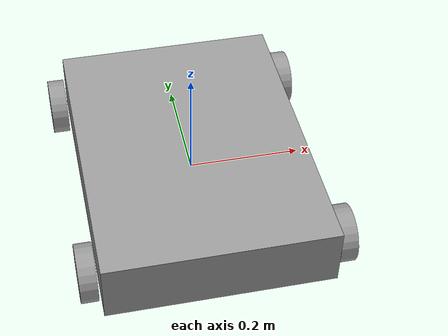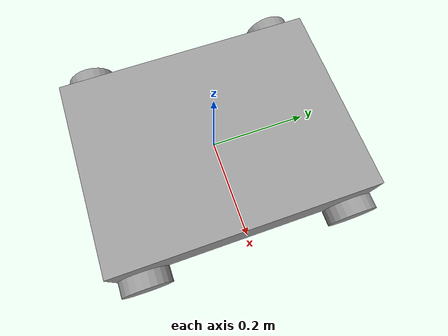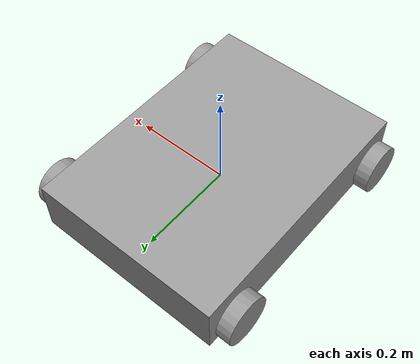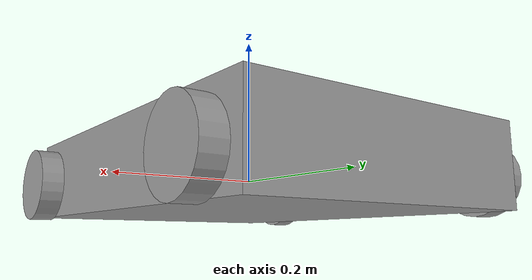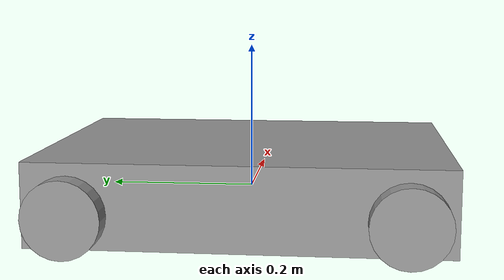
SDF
<?xml version='1.0'?>
<sdf version='1.7'>
  <model name='truck01'>
    <link name='link'>
      <inertial>
        <mass>1</mass>
        <inertia>
          <ixx>0.166667</ixx>
          <ixy>0</ixy>
          <ixz>0</ixz>
          <iyy>0.166667</iyy>
          <iyz>0</iyz>
          <izz>0.166667</izz>
        </inertia>
        <pose>0 0 0 0 -0 0</pose>
      </inertial>
      <self_collide>0</self_collide>
      <enable_wind>0</enable_wind>
      <kinematic>0</kinematic>
      <pose>0 -0 0.01 0 -0 0</pose>
      <gravity>1</gravity>
      <visual name='visual'>
        <geometry>
          <box>
            <size>0.4 0.54 0.11</size>
          </box>
        </geometry>
        <material>
          <script>
            <name>Gazebo/Grey</name>
            <uri>file://media/materials/scripts/gazebo.material</uri>
          </script>
          <shader type='pixel'>
            <normal_map>__default__</normal_map>
          </shader>
          <ambient>0.3 0.3 0.3 1</ambient>
          <diffuse>0.7 0.7 0.7 1</diffuse>
          <specular>0.01 0.01 0.01 1</specular>
          <emissive>0 0 0 1</emissive>
        </material>
        <pose>0 0 0 0 -0 0</pose>
        <transparency>0</transparency>
        <cast_shadows>1</cast_shadows>
      </visual>
      <collision name='collision'>
        <laser_retro>0</laser_retro>
        <max_contacts>10</max_contacts>
        <pose>0 0 0 0 -0 0</pose>
        <geometry>
          <box>
            <size>0.4 0.54 0.11</size>
          </box>
        </geometry>
        <surface>
          <friction>
            <ode>
              <mu>1</mu>
              <mu2>1</mu2>
              <fdir1>0 0 0</fdir1>
              <slip1>0</slip1>
              <slip2>0</slip2>
            </ode>
            <torsional>
              <coefficient>1</coefficient>
              <patch_radius>0</patch_radius>
              <surface_radius>0</surface_radius>
              <use_patch_radius>1</use_patch_radius>
              <ode>
                <slip>0</slip>
              </ode>
            </torsional>
          </friction>
          <bounce>
            <restitution_coefficient>0</restitution_coefficient>
            <threshold>1e+06</threshold>
          </bounce>
          <contact>
            <collide_without_contact>0</collide_without_contact>
            <collide_without_contact_bitmask>1</collide_without_contact_bitmask>
            <collide_bitmask>1</collide_bitmask>
            <ode>
              <soft_cfm>0</soft_cfm>
              <soft_erp>0.2</soft_erp>
              <kp>1e+13</kp>
              <kd>1</kd>
              <max_vel>0.01</max_vel>
              <min_depth>0</min_depth>
            </ode>
            <bullet>
              <split_impulse>1</split_impulse>
              <split_impulse_penetration_threshold>-0.01</split_impulse_penetration_threshold>
              <soft_cfm>0</soft_cfm>
              <soft_erp>0.2</soft_erp>
              <kp>1e+13</kp>
              <kd>1</kd>
            </bullet>
          </contact>
        </surface>
      </collision>
    </link>

    <plugin name="gazebo_ros_diff_drive" filename="libgazebo_ros_diff_drive.so">
      <ros>
        <!-- ROSパラメーターの設定 -->
        <namespace>/</namespace>
        <remapping>cmd_vel:=cmd_vel</remapping>
      </ros>
      <left_joint>link_JOINT_0</left_joint>
      <right_joint>link_JOINT_2</right_joint>
      <legacy_mode>false</legacy_mode>
      <publish_odom>true</publish_odom>
      <publish_odom_tf>true</publish_odom_tf>
      <command_topic>cmd_vel</command_topic>
      <odometry_frame>odom</odometry_frame>
      <odometry_topic>odom</odometry_topic>
      <robot_base_frame>base_footprint</robot_base_frame>
      <!-- 車輪の間隔と直径 -->
      <update_rate>20</update_rate>
      <wheel_separation>0.45</wheel_separation>
      <wheel_diameter>0.1</wheel_diameter>
      <!-- モータの最大トルク -->
      <torque>15</torque>
      <command_timeout>0.5</command_timeout>
      <publish_wheel_tf>true</publish_wheel_tf>
      <publish_wheel_joint_state>true</publish_wheel_joint_state>
    </plugin>

    <link name='link_0'>
      <inertial>
        <mass>1</mass>
        <inertia>
          <ixx>0.145833</ixx>
          <ixy>0</ixy>
          <ixz>0</ixz>
          <iyy>0.145833</iyy>
          <iyz>0</iyz>
          <izz>0.125</izz>
        </inertia>
        <pose>0 0 0 0 -0 0</pose>
      </inertial>
      <pose>-0.22 0.21 0 1.5707 0 1.5707</pose>
      <gravity>1</gravity>
      <self_collide>0</self_collide>
      <kinematic>0</kinematic>
      <enable_wind>0</enable_wind>
      <visual name='visual'>
        <pose>0 0 0 0 -0 0</pose>
        <geometry>
          <cylinder>
            <radius>0.05</radius>
            <length>0.03</length>
          </cylinder>
        </geometry>
        <material>
          <lighting>1</lighting>
          <script>
            <uri>file://media/materials/scripts/gazebo.material</uri>
            <name>Gazebo/Grey</name>
          </script>
          <shader type='pixel'>
            <normal_map>__default__</normal_map>
          </shader>
          <ambient>0.3 0.3 0.3 1</ambient>
          <diffuse>0.7 0.7 0.7 1</diffuse>
          <specular>0.01 0.01 0.01 1</specular>
          <emissive>0 0 0 1</emissive>
        </material>
        <transparency>0</transparency>
        <cast_shadows>1</cast_shadows>
      </visual>
      <collision name='collision'>
        <laser_retro>0</laser_retro>
        <max_contacts>10</max_contacts>
        <pose>0 0 0 0 -0 0</pose>
        <geometry>
          <cylinder>
            <radius>0.05</radius>
            <length>0.03</length>
          </cylinder>
        </geometry>
        <surface>
          <friction>
            <ode>
              <mu>1</mu>
              <mu2>1</mu2>
              <fdir1>0 0 0</fdir1>
              <slip1>0</slip1>
              <slip2>0</slip2>
            </ode>
            <torsional>
              <coefficient>1</coefficient>
              <patch_radius>0</patch_radius>
              <surface_radius>0</surface_radius>
              <use_patch_radius>1</use_patch_radius>
              <ode>
                <slip>0</slip>
              </ode>
            </torsional>
          </friction>
          <bounce>
            <restitution_coefficient>0</restitution_coefficient>
            <threshold>1e+06</threshold>
          </bounce>
          <contact>
            <collide_without_contact>0</collide_without_contact>
            <collide_without_contact_bitmask>1</collide_without_contact_bitmask>
            <collide_bitmask>1</collide_bitmask>
            <ode>
              <soft_cfm>0</soft_cfm>
              <soft_erp>0.2</soft_erp>
              <kp>1e+13</kp>
              <kd>1</kd>
              <max_vel>0.01</max_vel>
              <min_depth>0</min_depth>
            </ode>
            <bullet>
              <split_impulse>1</split_impulse>
              <split_impulse_penetration_threshold>-0.01</split_impulse_penetration_threshold>
              <soft_cfm>0</soft_cfm>
              <soft_erp>0.2</soft_erp>
              <kp>1e+13</kp>
              <kd>1</kd>
            </bullet>
          </contact>
        </surface>
      </collision>
    </link>
    <link name='link_0_clone'>
      <inertial>
        <mass>1</mass>
        <inertia>
          <ixx>0.145833</ixx>
          <ixy>0</ixy>
          <ixz>0</ixz>
          <iyy>0.145833</iyy>
          <iyz>0</iyz>
          <izz>0.125</izz>
        </inertia>
        <pose>0 0 0 0 -0 0</pose>
      </inertial>
      <pose>-0.22 -0.21 -0 1.5707 0 1.5707</pose>
      <gravity>1</gravity>
      <self_collide>0</self_collide>
      <kinematic>0</kinematic>
      <enable_wind>0</enable_wind>
      <visual name='visual'>
        <pose>0 0 0 0 -0 0</pose>
        <geometry>
          <cylinder>
            <radius>0.05</radius>
            <length>0.03</length>
          </cylinder>
        </geometry>
        <material>
          <lighting>1</lighting>
          <script>
            <uri>file://media/materials/scripts/gazebo.material</uri>
            <name>Gazebo/Grey</name>
          </script>
          <shader type='pixel'>
            <normal_map>__default__</normal_map>
          </shader>
          <ambient>0.3 0.3 0.3 1</ambient>
          <diffuse>0.7 0.7 0.7 1</diffuse>
          <specular>0.01 0.01 0.01 1</specular>
          <emissive>0 0 0 1</emissive>
        </material>
        <transparency>0</transparency>
        <cast_shadows>1</cast_shadows>
      </visual>
      <collision name='collision'>
        <laser_retro>0</laser_retro>
        <max_contacts>10</max_contacts>
        <pose>0 0 0 0 -0 0</pose>
        <geometry>
          <cylinder>
            <radius>0.05</radius>
            <length>0.03</length>
          </cylinder>
        </geometry>
        <surface>
          <friction>
            <ode>
              <mu>1</mu>
              <mu2>1</mu2>
              <fdir1>0 0 0</fdir1>
              <slip1>0</slip1>
              <slip2>0</slip2>
            </ode>
            <torsional>
              <coefficient>1</coefficient>
              <patch_radius>0</patch_radius>
              <surface_radius>0</surface_radius>
              <use_patch_radius>1</use_patch_radius>
              <ode>
                <slip>0</slip>
              </ode>
            </torsional>
          </friction>
          <bounce>
            <restitution_coefficient>0</restitution_coefficient>
            <threshold>1e+06</threshold>
          </bounce>
          <contact>
            <collide_without_contact>0</collide_without_contact>
            <collide_without_contact_bitmask>1</collide_without_contact_bitmask>
            <collide_bitmask>1</collide_bitmask>
            <ode>
              <soft_cfm>0</soft_cfm>
              <soft_erp>0.2</soft_erp>
              <kp>1e+13</kp>
              <kd>1</kd>
              <max_vel>0.01</max_vel>
              <min_depth>0</min_depth>
            </ode>
            <bullet>
              <split_impulse>1</split_impulse>
              <split_impulse_penetration_threshold>-0.01</split_impulse_penetration_threshold>
              <soft_cfm>0</soft_cfm>
              <soft_erp>0.2</soft_erp>
              <kp>1e+13</kp>
              <kd>1</kd>
            </bullet>
          </contact>
        </surface>
      </collision>
    </link>
    <link name='link_0_clone_0'>
      <inertial>
        <mass>1</mass>
        <inertia>
          <ixx>0.145833</ixx>
          <ixy>0</ixy>
          <ixz>0</ixz>
          <iyy>0.145833</iyy>
          <iyz>0</iyz>
          <izz>0.125</izz>
        </inertia>
        <pose>0 0 0 0 -0 0</pose>
      </inertial>
      <pose>0.22 0.21 0 1.5707 0 1.5707</pose>
      <gravity>1</gravity>
      <self_collide>0</self_collide>
      <kinematic>0</kinematic>
      <enable_wind>0</enable_wind>
      <visual name='visual'>
        <pose>0 0 0 0 -0 0</pose>
        <geometry>
          <cylinder>
            <radius>0.05</radius>
            <length>0.03</length>
          </cylinder>
        </geometry>
        <material>
          <lighting>1</lighting>
          <script>
            <uri>file://media/materials/scripts/gazebo.material</uri>
            <name>Gazebo/Grey</name>
          </script>
          <shader type='pixel'>
            <normal_map>__default__</normal_map>
          </shader>
          <ambient>0.3 0.3 0.3 1</ambient>
          <diffuse>0.7 0.7 0.7 1</diffuse>
          <specular>0.01 0.01 0.01 1</specular>
          <emissive>0 0 0 1</emissive>
        </material>
        <transparency>0</transparency>
        <cast_shadows>1</cast_shadows>
      </visual>
      <collision name='collision'>
        <laser_retro>0</laser_retro>
        <max_contacts>10</max_contacts>
        <pose>0 0 0 0 -0 0</pose>
        <geometry>
          <cylinder>
            <radius>0.05</radius>
            <length>0.03</length>
          </cylinder>
        </geometry>
        <surface>
          <friction>
            <ode>
              <mu>1</mu>
              <mu2>1</mu2>
              <fdir1>0 0 0</fdir1>
              <slip1>0</slip1>
              <slip2>0</slip2>
            </ode>
            <torsional>
              <coefficient>1</coefficient>
              <patch_radius>0</patch_radius>
              <surface_radius>0</surface_radius>
              <use_patch_radius>1</use_patch_radius>
              <ode>
                <slip>0</slip>
              </ode>
            </torsional>
          </friction>
          <bounce>
            <restitution_coefficient>0</restitution_coefficient>
            <threshold>1e+06</threshold>
          </bounce>
          <contact>
            <collide_without_contact>0</collide_without_contact>
            <collide_without_contact_bitmask>1</collide_without_contact_bitmask>
            <collide_bitmask>1</collide_bitmask>
            <ode>
              <soft_cfm>0</soft_cfm>
              <soft_erp>0.2</soft_erp>
              <kp>1e+13</kp>
              <kd>1</kd>
              <max_vel>0.01</max_vel>
              <min_depth>0</min_depth>
            </ode>
            <bullet>
              <split_impulse>1</split_impulse>
              <split_impulse_penetration_threshold>-0.01</split_impulse_penetration_threshold>
              <soft_cfm>0</soft_cfm>
              <soft_erp>0.2</soft_erp>
              <kp>1e+13</kp>
              <kd>1</kd>
            </bullet>
          </contact>
        </surface>
      </collision>
    </link>
    <link name='link_0_clone_clone'>
      <inertial>
        <mass>1</mass>
        <inertia>
          <ixx>0.145833</ixx>
          <ixy>0</ixy>
          <ixz>0</ixz>
          <iyy>0.145833</iyy>
          <iyz>0</iyz>
          <izz>0.125</izz>
        </inertia>
        <pose>0 0 0 0 -0 0</pose>
      </inertial>
      <pose>0.22 -0.21 -0 1.5707 0 1.5707</pose>
      <gravity>1</gravity>
      <self_collide>0</self_collide>
      <kinematic>0</kinematic>
      <enable_wind>0</enable_wind>
      <visual name='visual'>
        <pose>0 0 0 0 -0 0</pose>
        <geometry>
          <cylinder>
            <radius>0.05</radius>
            <length>0.03</length>
          </cylinder>
        </geometry>
        <material>
          <lighting>1</lighting>
          <script>
            <uri>file://media/materials/scripts/gazebo.material</uri>
            <name>Gazebo/Grey</name>
          </script>
          <shader type='pixel'>
            <normal_map>__default__</normal_map>
          </shader>
          <ambient>0.3 0.3 0.3 1</ambient>
          <diffuse>0.7 0.7 0.7 1</diffuse>
          <specular>0.01 0.01 0.01 1</specular>
          <emissive>0 0 0 1</emissive>
        </material>
        <transparency>0</transparency>
        <cast_shadows>1</cast_shadows>
      </visual>
      <collision name='collision'>
        <laser_retro>0</laser_retro>
        <max_contacts>10</max_contacts>
        <pose>0 0 0 0 -0 0</pose>
        <geometry>
          <cylinder>
            <radius>0.05</radius>
            <length>0.03</length>
          </cylinder>
        </geometry>
        <surface>
          <friction>
            <ode>
              <mu>1</mu>
              <mu2>1</mu2>
              <fdir1>0 0 0</fdir1>
              <slip1>0</slip1>
              <slip2>0</slip2>
            </ode>
            <torsional>
              <coefficient>1</coefficient>
              <patch_radius>0</patch_radius>
              <surface_radius>0</surface_radius>
              <use_patch_radius>1</use_patch_radius>
              <ode>
                <slip>0</slip>
              </ode>
            </torsional>
          </friction>
          <bounce>
            <restitution_coefficient>0</restitution_coefficient>
            <threshold>1e+06</threshold>
          </bounce>
          <contact>
            <collide_without_contact>0</collide_without_contact>
            <collide_without_contact_bitmask>1</collide_without_contact_bitmask>
            <collide_bitmask>1</collide_bitmask>
            <ode>
              <soft_cfm>0</soft_cfm>
              <soft_erp>0.2</soft_erp>
              <kp>1e+13</kp>
              <kd>1</kd>
              <max_vel>0.01</max_vel>
              <min_depth>0</min_depth>
            </ode>
            <bullet>
              <split_impulse>1</split_impulse>
              <split_impulse_penetration_threshold>-0.01</split_impulse_penetration_threshold>
              <soft_cfm>0</soft_cfm>
              <soft_erp>0.2</soft_erp>
              <kp>1e+13</kp>
              <kd>1</kd>
            </bullet>
          </contact>
        </surface>
      </collision>
    </link>
    <joint name='link_JOINT_0' type='revolute'>
      <parent>link</parent>
      <child>link_0</child>
      <pose>0 0 0 0 -0 0</pose>
      <axis>
        <xyz>-0 -0 -1</xyz>
        <limit>
          <lower>-1.79769e+308</lower>
          <upper>1.79769e+308</upper>
          <effort>-1</effort>
          <velocity>-1</velocity>
        </limit>
        <dynamics>
          <spring_reference>0</spring_reference>
          <spring_stiffness>0</spring_stiffness>
          <damping>0</damping>
        </dynamics>
      </axis>
      <physics>
        <ode>
          <limit>
            <cfm>0</cfm>
            <erp>0.2</erp>
          </limit>
          <suspension>
            <cfm>0</cfm>
            <erp>0.2</erp>
          </suspension>
        </ode>
      </physics>
    </joint>
    <joint name='link_JOINT_1' type='revolute'>
      <parent>link</parent>
      <child>link_0_clone</child>
      <pose>0 0 0 0 -0 0</pose>
      <axis>
        <xyz>-0 -0 -1</xyz>
        <limit>
          <lower>-1.79769e+308</lower>
          <upper>1.79769e+308</upper>
          <effort>-1</effort>
          <velocity>-1</velocity>
        </limit>
        <dynamics>
          <spring_reference>0</spring_reference>
          <spring_stiffness>0</spring_stiffness>
          <damping>0</damping>
        </dynamics>
      </axis>
      <physics>
        <ode>
          <limit>
            <cfm>0</cfm>
            <erp>0.2</erp>
          </limit>
          <suspension>
            <cfm>0</cfm>
            <erp>0.2</erp>
          </suspension>
        </ode>
      </physics>
    </joint>
    <joint name='link_JOINT_2' type='revolute'>
      <parent>link</parent>
      <child>link_0_clone_0</child>
      <pose>0 0 0 0 -0 0</pose>
      <axis>
        <xyz>0 0 1</xyz>
        <limit>
          <lower>-1.79769e+308</lower>
          <upper>1.79769e+308</upper>
          <effort>-1</effort>
          <velocity>-1</velocity>
        </limit>
        <dynamics>
          <spring_reference>0</spring_reference>
          <spring_stiffness>0</spring_stiffness>
          <damping>0</damping>
        </dynamics>
      </axis>
      <physics>
        <ode>
          <limit>
            <cfm>0</cfm>
            <erp>0.2</erp>
          </limit>
          <suspension>
            <cfm>0</cfm>
            <erp>0.2</erp>
          </suspension>
        </ode>
      </physics>
    </joint>
    <joint name='link_JOINT_3' type='revolute'>
      <parent>link</parent>
      <child>link_0_clone_clone</child>
      <pose>0 0 0 0 -0 0</pose>
      <axis>
        <xyz>0 0 1</xyz>
        <limit>
          <lower>-1.79769e+308</lower>
          <upper>1.79769e+308</upper>
          <effort>-1</effort>
          <velocity>-1</velocity>
        </limit>
        <dynamics>
          <spring_reference>0</spring_reference>
          <spring_stiffness>0</spring_stiffness>
          <damping>0</damping>
        </dynamics>
      </axis>
      <physics>
        <ode>
          <limit>
            <cfm>0</cfm>
            <erp>0.2</erp>
          </limit>
          <suspension>
            <cfm>0</cfm>
            <erp>0.2</erp>
          </suspension>
        </ode>
      </physics>
    </joint>
    <static>0</static>
    <allow_auto_disable>1</allow_auto_disable>
  </model>
</sdf>
